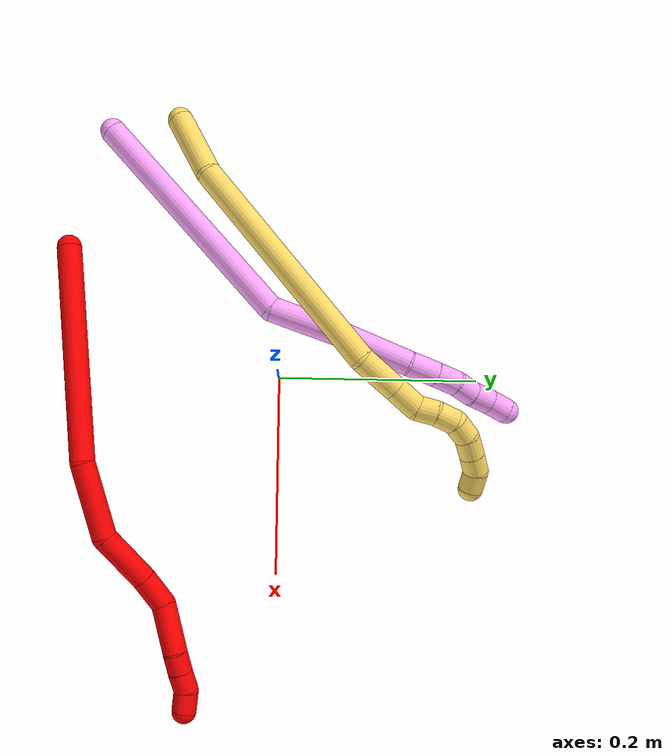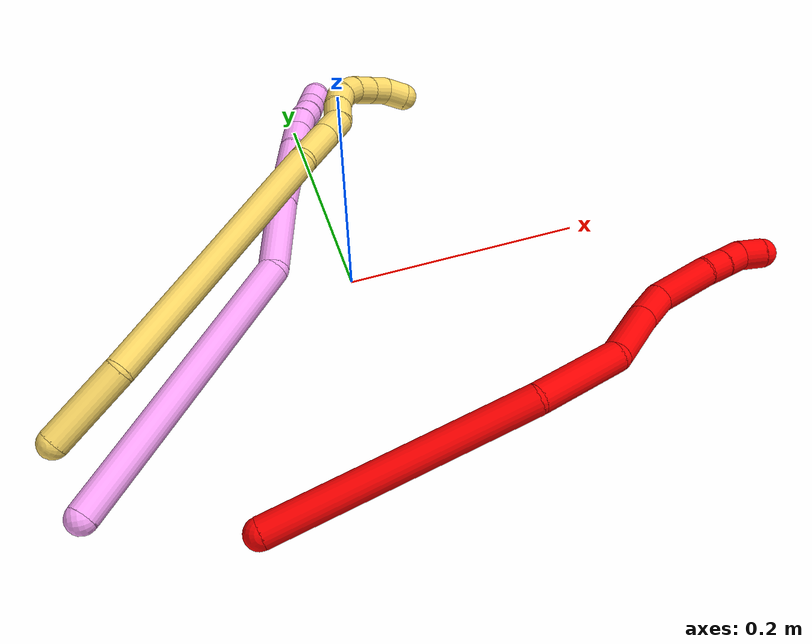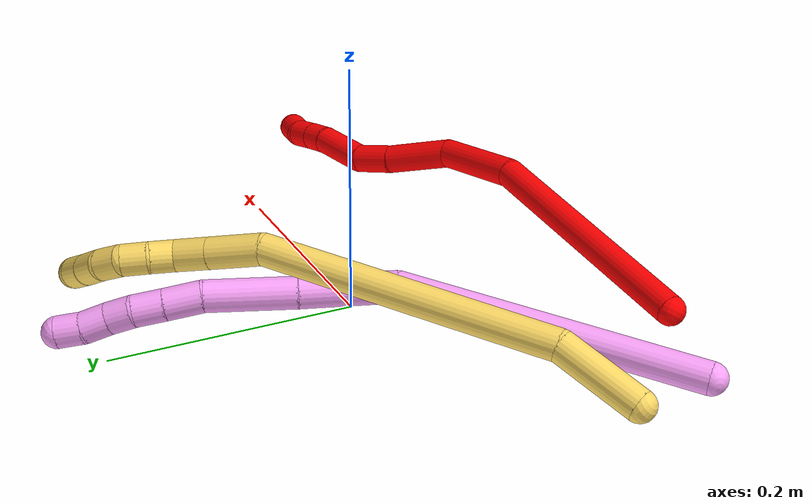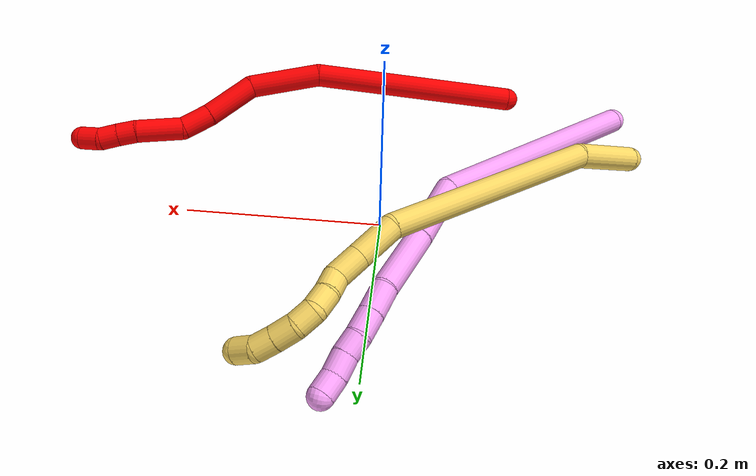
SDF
<sdf version="1.7">
 <world name="default">
  <model name="2">
   <static>0</static>
   <link name="2">
    <collision name="collision-cylinder-e_1_1_4">
     <pose>0.103478 0.016603 0.032128 -0.476989 1.23458 -0.341781</pose>
     <geometry><cylinder><radius>0.0125</radius><length>0.219232</length></cylinder></geometry>
     <surface>
      <friction><ode><mu>1.16</mu><mu2>1.16</mu2><slip1>0</slip1><slip2>0</slip2></ode></friction>
      <contact><ode><kp>1e+06</kp><kd>1</kd><max_vel>0</max_vel><min_depth>0.001</min_depth></ode></contact>
     </surface>
    </collision>
    <visual name="visual-cylinder-e_1_1_4">
     <pose>0.103478 0.016603 0.032128 -0.476989 1.23458 -0.341781</pose>
     <geometry><cylinder><radius>0.0125</radius><length>0.219232</length></cylinder></geometry>
     <material><ambient>1 0 0 1</ambient></material>
    </visual>
    <collision name="collision-cylinder-e_2_4_5">
     <pose>0.245098 0.03886 0.06435 -1.55416 1.42363 -1.40719</pose>
     <geometry><cylinder><radius>0.0125</radius><length>0.077117</length></cylinder></geometry>
     <surface>
      <friction><ode><mu>1.16</mu><mu2>1.16</mu2><slip1>0</slip1><slip2>0</slip2></ode></friction>
      <contact><ode><kp>1e+06</kp><kd>1</kd><max_vel>0</max_vel><min_depth>0.001</min_depth></ode></contact>
     </surface>
    </collision>
    <visual name="visual-cylinder-e_2_4_5">
     <pose>0.245098 0.03886 0.06435 -1.55416 1.42363 -1.40719</pose>
     <geometry><cylinder><radius>0.0125</radius><length>0.077117</length></cylinder></geometry>
     <material><ambient>1 0 0 1</ambient></material>
    </visual>
    <collision name="collision-cylinder-e_3_5_6">
     <pose>0.307862 0.053911 0.052501 -2.47488 1.01782 -2.03067</pose>
     <geometry><cylinder><radius>0.0125</radius><length>0.057869</length></cylinder></geometry>
     <surface>
      <friction><ode><mu>1.16</mu><mu2>1.16</mu2><slip1>0</slip1><slip2>0</slip2></ode></friction>
      <contact><ode><kp>1e+06</kp><kd>1</kd><max_vel>0</max_vel><min_depth>0.001</min_depth></ode></contact>
     </surface>
    </collision>
    <visual name="visual-cylinder-e_3_5_6">
     <pose>0.307862 0.053911 0.052501 -2.47488 1.01782 -2.03067</pose>
     <geometry><cylinder><radius>0.0125</radius><length>0.057869</length></cylinder></geometry>
     <material><ambient>1 0 0 1</ambient></material>
    </visual>
    <collision name="collision-cylinder-e_4_6_7">
     <pose>0.347292 0.068872 0.035628 -2.29597 1.10556 -1.88131</pose>
     <geometry><cylinder><radius>0.0125</radius><length>0.033136</length></cylinder></geometry>
     <surface>
      <friction><ode><mu>1.16</mu><mu2>1.16</mu2><slip1>0</slip1><slip2>0</slip2></ode></friction>
      <contact><ode><kp>1e+06</kp><kd>1</kd><max_vel>0</max_vel><min_depth>0.001</min_depth></ode></contact>
     </surface>
    </collision>
    <visual name="visual-cylinder-e_4_6_7">
     <pose>0.347292 0.068872 0.035628 -2.29597 1.10556 -1.88131</pose>
     <geometry><cylinder><radius>0.0125</radius><length>0.033136</length></cylinder></geometry>
     <material><ambient>1 0 0 1</ambient></material>
    </visual>
    <collision name="collision-cylinder-e_5_7_8">
     <pose>0.386689 0.079388 0.033555 -1.04767 1.34232 -0.860211</pose>
     <geometry><cylinder><radius>0.0125</radius><length>0.050491</length></cylinder></geometry>
     <surface>
      <friction><ode><mu>1.16</mu><mu2>1.16</mu2><slip1>0</slip1><slip2>0</slip2></ode></friction>
      <contact><ode><kp>1e+06</kp><kd>1</kd><max_vel>0</max_vel><min_depth>0.001</min_depth></ode></contact>
     </surface>
    </collision>
    <visual name="visual-cylinder-e_5_7_8">
     <pose>0.386689 0.079388 0.033555 -1.04767 1.34232 -0.860211</pose>
     <geometry><cylinder><radius>0.0125</radius><length>0.050491</length></cylinder></geometry>
     <material><ambient>1 0 0 1</ambient></material>
    </visual>
    <collision name="collision-cylinder-e_6_8_9">
     <pose>0.421285 0.085343 0.036276 -1.70504 1.47007 -1.60455</pose>
     <geometry><cylinder><radius>0.0125</radius><length>0.020115</length></cylinder></geometry>
     <surface>
      <friction><ode><mu>1.16</mu><mu2>1.16</mu2><slip1>0</slip1><slip2>0</slip2></ode></friction>
      <contact><ode><kp>1e+06</kp><kd>1</kd><max_vel>0</max_vel><min_depth>0.001</min_depth></ode></contact>
     </surface>
    </collision>
    <visual name="visual-cylinder-e_6_8_9">
     <pose>0.421285 0.085343 0.036276 -1.70504 1.47007 -1.60455</pose>
     <geometry><cylinder><radius>0.0125</radius><length>0.020115</length></cylinder></geometry>
     <material><ambient>1 0 0 1</ambient></material>
    </visual>
    <collision name="collision-cylinder-e_7_9_10">
     <pose>0.441351 0.087598 0.03558 -1.99146 1.43519 -1.86412</pose>
     <geometry><cylinder><radius>0.0125</radius><length>0.020305</length></cylinder></geometry>
     <surface>
      <friction><ode><mu>1.16</mu><mu2>1.16</mu2><slip1>0</slip1><slip2>0</slip2></ode></friction>
      <contact><ode><kp>1e+06</kp><kd>1</kd><max_vel>0</max_vel><min_depth>0.001</min_depth></ode></contact>
     </surface>
    </collision>
    <visual name="visual-cylinder-e_7_9_10">
     <pose>0.441351 0.087598 0.03558 -1.99146 1.43519 -1.86412</pose>
     <geometry><cylinder><radius>0.0125</radius><length>0.020305</length></cylinder></geometry>
     <material><ambient>1 0 0 1</ambient></material>
    </visual>
    <collision name="collision-cylinder-e_8_10_2">
     <pose>0.461851 0.087113 0.037481 0.614902 1.28983 0.468897</pose>
     <geometry><cylinder><radius>0.0125</radius><length>0.021734</length></cylinder></geometry>
     <surface>
      <friction><ode><mu>1.16</mu><mu2>1.16</mu2><slip1>0</slip1><slip2>0</slip2></ode></friction>
      <contact><ode><kp>1e+06</kp><kd>1</kd><max_vel>0</max_vel><min_depth>0.001</min_depth></ode></contact>
     </surface>
    </collision>
    <visual name="visual-cylinder-e_8_10_2">
     <pose>0.461851 0.087113 0.037481 0.614902 1.28983 0.468897</pose>
     <geometry><cylinder><radius>0.0125</radius><length>0.021734</length></cylinder></geometry>
     <material><ambient>1 0 0 1</ambient></material>
    </visual>
    <collision name="collision-sphere-2">
     <pose>0.472292 0.085375 0.039942 0 -0 0</pose>
     <geometry><sphere><radius>0.0125</radius></sphere></geometry>
     <surface>
      <friction><ode><mu>1.16</mu><mu2>1.16</mu2><slip1>0</slip1><slip2>0</slip2></ode></friction>
      <contact><ode><kp>1e+06</kp><kd>1</kd><max_vel>0</max_vel><min_depth>0.001</min_depth></ode></contact>
     </surface>
    </collision>
    <visual name="visual-sphere-2">
     <pose>0.472292 0.085375 0.039942 0 -0 0</pose>
     <geometry><sphere><radius>0.0125</radius></sphere></geometry>
     <material><ambient>1 0 0 1</ambient></material>
    </visual>
    <collision name="collision-sphere-10">
     <pose>0.45141 0.088851 0.03502 0 -0 0</pose>
     <geometry><sphere><radius>0.0125</radius></sphere></geometry>
     <surface>
      <friction><ode><mu>1.16</mu><mu2>1.16</mu2><slip1>0</slip1><slip2>0</slip2></ode></friction>
      <contact><ode><kp>1e+06</kp><kd>1</kd><max_vel>0</max_vel><min_depth>0.001</min_depth></ode></contact>
     </surface>
    </collision>
    <visual name="visual-sphere-10">
     <pose>0.45141 0.088851 0.03502 0 -0 0</pose>
     <geometry><sphere><radius>0.0125</radius></sphere></geometry>
     <material><ambient>1 0 0 1</ambient></material>
    </visual>
    <collision name="collision-sphere-9">
     <pose>0.431292 0.086346 0.036141 0 -0 0</pose>
     <geometry><sphere><radius>0.0125</radius></sphere></geometry>
     <surface>
      <friction><ode><mu>1.16</mu><mu2>1.16</mu2><slip1>0</slip1><slip2>0</slip2></ode></friction>
      <contact><ode><kp>1e+06</kp><kd>1</kd><max_vel>0</max_vel><min_depth>0.001</min_depth></ode></contact>
     </surface>
    </collision>
    <visual name="visual-sphere-9">
     <pose>0.431292 0.086346 0.036141 0 -0 0</pose>
     <geometry><sphere><radius>0.0125</radius></sphere></geometry>
     <material><ambient>1 0 0 1</ambient></material>
    </visual>
    <collision name="collision-sphere-4">
     <pose>0.206957 0.033207 0.064256 0 -0 0</pose>
     <geometry><sphere><radius>0.0125</radius></sphere></geometry>
     <surface>
      <friction><ode><mu>1.16</mu><mu2>1.16</mu2><slip1>0</slip1><slip2>0</slip2></ode></friction>
      <contact><ode><kp>1e+06</kp><kd>1</kd><max_vel>0</max_vel><min_depth>0.001</min_depth></ode></contact>
     </surface>
    </collision>
    <visual name="visual-sphere-4">
     <pose>0.206957 0.033207 0.064256 0 -0 0</pose>
     <geometry><sphere><radius>0.0125</radius></sphere></geometry>
     <material><ambient>1 0 0 1</ambient></material>
    </visual>
    <collision name="collision-sphere-1">
     <geometry><sphere><radius>0.0125</radius></sphere></geometry>
     <surface>
      <friction><ode><mu>1.16</mu><mu2>1.16</mu2><slip1>0</slip1><slip2>0</slip2></ode></friction>
      <contact><ode><kp>1e+06</kp><kd>1</kd><max_vel>0</max_vel><min_depth>0.001</min_depth></ode></contact>
     </surface>
    </collision>
    <visual name="visual-sphere-1">
     <geometry><sphere><radius>0.0125</radius></sphere></geometry>
     <material><ambient>1 0 0 1</ambient></material>
    </visual>
    <collision name="collision-sphere-8">
     <pose>0.411278 0.084341 0.036411 0 -0 0</pose>
     <geometry><sphere><radius>0.0125</radius></sphere></geometry>
     <surface>
      <friction><ode><mu>1.16</mu><mu2>1.16</mu2><slip1>0</slip1><slip2>0</slip2></ode></friction>
      <contact><ode><kp>1e+06</kp><kd>1</kd><max_vel>0</max_vel><min_depth>0.001</min_depth></ode></contact>
     </surface>
    </collision>
    <visual name="visual-sphere-8">
     <pose>0.411278 0.084341 0.036411 0 -0 0</pose>
     <geometry><sphere><radius>0.0125</radius></sphere></geometry>
     <material><ambient>1 0 0 1</ambient></material>
    </visual>
    <collision name="collision-sphere-5">
     <pose>0.28324 0.044513 0.064444 0 -0 0</pose>
     <geometry><sphere><radius>0.0125</radius></sphere></geometry>
     <surface>
      <friction><ode><mu>1.16</mu><mu2>1.16</mu2><slip1>0</slip1><slip2>0</slip2></ode></friction>
      <contact><ode><kp>1e+06</kp><kd>1</kd><max_vel>0</max_vel><min_depth>0.001</min_depth></ode></contact>
     </surface>
    </collision>
    <visual name="visual-sphere-5">
     <pose>0.28324 0.044513 0.064444 0 -0 0</pose>
     <geometry><sphere><radius>0.0125</radius></sphere></geometry>
     <material><ambient>1 0 0 1</ambient></material>
    </visual>
    <collision name="collision-sphere-6">
     <pose>0.332485 0.063309 0.040558 0 -0 0</pose>
     <geometry><sphere><radius>0.0125</radius></sphere></geometry>
     <surface>
      <friction><ode><mu>1.16</mu><mu2>1.16</mu2><slip1>0</slip1><slip2>0</slip2></ode></friction>
      <contact><ode><kp>1e+06</kp><kd>1</kd><max_vel>0</max_vel><min_depth>0.001</min_depth></ode></contact>
     </surface>
    </collision>
    <visual name="visual-sphere-6">
     <pose>0.332485 0.063309 0.040558 0 -0 0</pose>
     <geometry><sphere><radius>0.0125</radius></sphere></geometry>
     <material><ambient>1 0 0 1</ambient></material>
    </visual>
    <collision name="collision-sphere-7">
     <pose>0.362099 0.074435 0.030698 0 -0 0</pose>
     <geometry><sphere><radius>0.0125</radius></sphere></geometry>
     <surface>
      <friction><ode><mu>1.16</mu><mu2>1.16</mu2><slip1>0</slip1><slip2>0</slip2></ode></friction>
      <contact><ode><kp>1e+06</kp><kd>1</kd><max_vel>0</max_vel><min_depth>0.001</min_depth></ode></contact>
     </surface>
    </collision>
    <visual name="visual-sphere-7">
     <pose>0.362099 0.074435 0.030698 0 -0 0</pose>
     <geometry><sphere><radius>0.0125</radius></sphere></geometry>
     <material><ambient>1 0 0 1</ambient></material>
    </visual>
    <inertial>
     <pose>0.235818 0.042872 0.040371 0 -0 0</pose>
     <mass>0.5</mass>
     <inertia>
      <ixx>0.000194</ixx>
      <ixy>0</ixy>
      <ixz>0</ixz>
      <iyy>0.000837</iyy>
      <iyz>0</iyz>
      <izz>-0.001061</izz>
     </inertia>
    </inertial>
   </link>
   <pose>-0.127298 -0.213635 0.011496 0.679983 0.177536 0.174878</pose>
  </model>
  <model name="4">
   <static>0</static>
   <link name="4">
    <collision name="collision-cylinder-e_1_1_4">
     <pose>0.001973 0.092953 -0.075895 -2.25551 0.016441 -0.034646</pose>
     <geometry><cylinder><radius>0.0125</radius><length>0.240034</length></cylinder></geometry>
     <surface>
      <friction><ode><mu>1.16</mu><mu2>1.16</mu2><slip1>0</slip1><slip2>0</slip2></ode></friction>
      <contact><ode><kp>1e+06</kp><kd>1</kd><max_vel>0</max_vel><min_depth>0.001</min_depth></ode></contact>
     </surface>
    </collision>
    <visual name="visual-cylinder-e_1_1_4">
     <pose>0.001973 0.092953 -0.075895 -2.25551 0.016441 -0.034646</pose>
     <geometry><cylinder><radius>0.0125</radius><length>0.240034</length></cylinder></geometry>
     <material><ambient>1 0.65098 0.996078 1</ambient></material>
    </visual>
    <collision name="collision-cylinder-e_2_4_5">
     <pose>0.001224 0.22243 -0.158419 -1.75034 -0.073194 0.087658</pose>
     <geometry><cylinder><radius>0.0125</radius><length>0.074443</length></cylinder></geometry>
     <surface>
      <friction><ode><mu>1.16</mu><mu2>1.16</mu2><slip1>0</slip1><slip2>0</slip2></ode></friction>
      <contact><ode><kp>1e+06</kp><kd>1</kd><max_vel>0</max_vel><min_depth>0.001</min_depth></ode></contact>
     </surface>
    </collision>
    <visual name="visual-cylinder-e_2_4_5">
     <pose>0.001224 0.22243 -0.158419 -1.75034 -0.073194 0.087658</pose>
     <geometry><cylinder><radius>0.0125</radius><length>0.074443</length></cylinder></geometry>
     <material><ambient>1 0.65098 0.996078 1</ambient></material>
    </visual>
    <collision name="collision-cylinder-e_3_5_6">
     <pose>-0.004448 0.293119 -0.173235 -1.80597 -0.083794 0.106206</pose>
     <geometry><cylinder><radius>0.0125</radius><length>0.070509</length></cylinder></geometry>
     <surface>
      <friction><ode><mu>1.16</mu><mu2>1.16</mu2><slip1>0</slip1><slip2>0</slip2></ode></friction>
      <contact><ode><kp>1e+06</kp><kd>1</kd><max_vel>0</max_vel><min_depth>0.001</min_depth></ode></contact>
     </surface>
    </collision>
    <visual name="visual-cylinder-e_3_5_6">
     <pose>-0.004448 0.293119 -0.173235 -1.80597 -0.083794 0.106206</pose>
     <geometry><cylinder><radius>0.0125</radius><length>0.070509</length></cylinder></geometry>
     <material><ambient>1 0.65098 0.996078 1</ambient></material>
    </visual>
    <collision name="collision-cylinder-e_4_6_7">
     <pose>-0.011242 0.341125 -0.184061 -1.7593 -0.266225 0.320943</pose>
     <geometry><cylinder><radius>0.0125</radius><length>0.029213</length></cylinder></geometry>
     <surface>
      <friction><ode><mu>1.16</mu><mu2>1.16</mu2><slip1>0</slip1><slip2>0</slip2></ode></friction>
      <contact><ode><kp>1e+06</kp><kd>1</kd><max_vel>0</max_vel><min_depth>0.001</min_depth></ode></contact>
     </surface>
    </collision>
    <visual name="visual-cylinder-e_4_6_7">
     <pose>-0.011242 0.341125 -0.184061 -1.7593 -0.266225 0.320943</pose>
     <geometry><cylinder><radius>0.0125</radius><length>0.029213</length></cylinder></geometry>
     <material><ambient>1 0.65098 0.996078 1</ambient></material>
    </visual>
    <collision name="collision-cylinder-e_5_7_8">
     <pose>-0.018216 0.366208 -0.189157 -1.78585 -0.265719 0.328983</pose>
     <geometry><cylinder><radius>0.0125</radius><length>0.023849</length></cylinder></geometry>
     <surface>
      <friction><ode><mu>1.16</mu><mu2>1.16</mu2><slip1>0</slip1><slip2>0</slip2></ode></friction>
      <contact><ode><kp>1e+06</kp><kd>1</kd><max_vel>0</max_vel><min_depth>0.001</min_depth></ode></contact>
     </surface>
    </collision>
    <visual name="visual-cylinder-e_5_7_8">
     <pose>-0.018216 0.366208 -0.189157 -1.78585 -0.265719 0.328983</pose>
     <geometry><cylinder><radius>0.0125</radius><length>0.023849</length></cylinder></geometry>
     <material><ambient>1 0.65098 0.996078 1</ambient></material>
    </visual>
    <collision name="collision-cylinder-e_6_8_9">
     <pose>-0.025572 0.385997 -0.194886 -1.93654 -0.432445 0.618202</pose>
     <geometry><cylinder><radius>0.0125</radius><length>0.020162</length></cylinder></geometry>
     <surface>
      <friction><ode><mu>1.16</mu><mu2>1.16</mu2><slip1>0</slip1><slip2>0</slip2></ode></friction>
      <contact><ode><kp>1e+06</kp><kd>1</kd><max_vel>0</max_vel><min_depth>0.001</min_depth></ode></contact>
     </surface>
    </collision>
    <visual name="visual-cylinder-e_6_8_9">
     <pose>-0.025572 0.385997 -0.194886 -1.93654 -0.432445 0.618202</pose>
     <geometry><cylinder><radius>0.0125</radius><length>0.020162</length></cylinder></geometry>
     <material><ambient>1 0.65098 0.996078 1</ambient></material>
    </visual>
    <collision name="collision-cylinder-e_7_9_10">
     <pose>-0.034253 0.404054 -0.200145 -1.77667 -0.430047 0.525035</pose>
     <geometry><cylinder><radius>0.0125</radius><length>0.021377</length></cylinder></geometry>
     <surface>
      <friction><ode><mu>1.16</mu><mu2>1.16</mu2><slip1>0</slip1><slip2>0</slip2></ode></friction>
      <contact><ode><kp>1e+06</kp><kd>1</kd><max_vel>0</max_vel><min_depth>0.001</min_depth></ode></contact>
     </surface>
    </collision>
    <visual name="visual-cylinder-e_7_9_10">
     <pose>-0.034253 0.404054 -0.200145 -1.77667 -0.430047 0.525035</pose>
     <geometry><cylinder><radius>0.0125</radius><length>0.021377</length></cylinder></geometry>
     <material><ambient>1 0.65098 0.996078 1</ambient></material>
    </visual>
    <collision name="collision-cylinder-e_8_10_2">
     <pose>-0.04143 0.422939 -0.205115 -1.87892 -0.269821 0.367108</pose>
     <geometry><cylinder><radius>0.0125</radius><length>0.020413</length></cylinder></geometry>
     <surface>
      <friction><ode><mu>1.16</mu><mu2>1.16</mu2><slip1>0</slip1><slip2>0</slip2></ode></friction>
      <contact><ode><kp>1e+06</kp><kd>1</kd><max_vel>0</max_vel><min_depth>0.001</min_depth></ode></contact>
     </surface>
    </collision>
    <visual name="visual-cylinder-e_8_10_2">
     <pose>-0.04143 0.422939 -0.205115 -1.87892 -0.269821 0.367108</pose>
     <geometry><cylinder><radius>0.0125</radius><length>0.020413</length></cylinder></geometry>
     <material><ambient>1 0.65098 0.996078 1</ambient></material>
    </visual>
    <collision name="collision-sphere-2">
     <pose>-0.044151 0.432312 -0.208098 0 -0 0</pose>
     <geometry><sphere><radius>0.0125</radius></sphere></geometry>
     <surface>
      <friction><ode><mu>1.16</mu><mu2>1.16</mu2><slip1>0</slip1><slip2>0</slip2></ode></friction>
      <contact><ode><kp>1e+06</kp><kd>1</kd><max_vel>0</max_vel><min_depth>0.001</min_depth></ode></contact>
     </surface>
    </collision>
    <visual name="visual-sphere-2">
     <pose>-0.044151 0.432312 -0.208098 0 -0 0</pose>
     <geometry><sphere><radius>0.0125</radius></sphere></geometry>
     <material><ambient>1 0.65098 0.996078 1</ambient></material>
    </visual>
    <collision name="collision-sphere-10">
     <pose>-0.03871 0.413565 -0.202132 0 -0 0</pose>
     <geometry><sphere><radius>0.0125</radius></sphere></geometry>
     <surface>
      <friction><ode><mu>1.16</mu><mu2>1.16</mu2><slip1>0</slip1><slip2>0</slip2></ode></friction>
      <contact><ode><kp>1e+06</kp><kd>1</kd><max_vel>0</max_vel><min_depth>0.001</min_depth></ode></contact>
     </surface>
    </collision>
    <visual name="visual-sphere-10">
     <pose>-0.03871 0.413565 -0.202132 0 -0 0</pose>
     <geometry><sphere><radius>0.0125</radius></sphere></geometry>
     <material><ambient>1 0.65098 0.996078 1</ambient></material>
    </visual>
    <collision name="collision-sphere-9">
     <pose>-0.029797 0.394544 -0.198159 0 -0 0</pose>
     <geometry><sphere><radius>0.0125</radius></sphere></geometry>
     <surface>
      <friction><ode><mu>1.16</mu><mu2>1.16</mu2><slip1>0</slip1><slip2>0</slip2></ode></friction>
      <contact><ode><kp>1e+06</kp><kd>1</kd><max_vel>0</max_vel><min_depth>0.001</min_depth></ode></contact>
     </surface>
    </collision>
    <visual name="visual-sphere-9">
     <pose>-0.029797 0.394544 -0.198159 0 -0 0</pose>
     <geometry><sphere><radius>0.0125</radius></sphere></geometry>
     <material><ambient>1 0.65098 0.996078 1</ambient></material>
    </visual>
    <collision name="collision-sphere-4">
     <pose>0.003946 0.185905 -0.15179 0 -0 0</pose>
     <geometry><sphere><radius>0.0125</radius></sphere></geometry>
     <surface>
      <friction><ode><mu>1.16</mu><mu2>1.16</mu2><slip1>0</slip1><slip2>0</slip2></ode></friction>
      <contact><ode><kp>1e+06</kp><kd>1</kd><max_vel>0</max_vel><min_depth>0.001</min_depth></ode></contact>
     </surface>
    </collision>
    <visual name="visual-sphere-4">
     <pose>0.003946 0.185905 -0.15179 0 -0 0</pose>
     <geometry><sphere><radius>0.0125</radius></sphere></geometry>
     <material><ambient>1 0.65098 0.996078 1</ambient></material>
    </visual>
    <collision name="collision-sphere-1">
     <geometry><sphere><radius>0.0125</radius></sphere></geometry>
     <surface>
      <friction><ode><mu>1.16</mu><mu2>1.16</mu2><slip1>0</slip1><slip2>0</slip2></ode></friction>
      <contact><ode><kp>1e+06</kp><kd>1</kd><max_vel>0</max_vel><min_depth>0.001</min_depth></ode></contact>
     </surface>
    </collision>
    <visual name="visual-sphere-1">
     <geometry><sphere><radius>0.0125</radius></sphere></geometry>
     <material><ambient>1 0.65098 0.996078 1</ambient></material>
    </visual>
    <collision name="collision-sphere-8">
     <pose>-0.021348 0.377449 -0.191613 0 -0 0</pose>
     <geometry><sphere><radius>0.0125</radius></sphere></geometry>
     <surface>
      <friction><ode><mu>1.16</mu><mu2>1.16</mu2><slip1>0</slip1><slip2>0</slip2></ode></friction>
      <contact><ode><kp>1e+06</kp><kd>1</kd><max_vel>0</max_vel><min_depth>0.001</min_depth></ode></contact>
     </surface>
    </collision>
    <visual name="visual-sphere-8">
     <pose>-0.021348 0.377449 -0.191613 0 -0 0</pose>
     <geometry><sphere><radius>0.0125</radius></sphere></geometry>
     <material><ambient>1 0.65098 0.996078 1</ambient></material>
    </visual>
    <collision name="collision-sphere-5">
     <pose>-0.001498 0.258955 -0.165049 0 -0 0</pose>
     <geometry><sphere><radius>0.0125</radius></sphere></geometry>
     <surface>
      <friction><ode><mu>1.16</mu><mu2>1.16</mu2><slip1>0</slip1><slip2>0</slip2></ode></friction>
      <contact><ode><kp>1e+06</kp><kd>1</kd><max_vel>0</max_vel><min_depth>0.001</min_depth></ode></contact>
     </surface>
    </collision>
    <visual name="visual-sphere-5">
     <pose>-0.001498 0.258955 -0.165049 0 -0 0</pose>
     <geometry><sphere><radius>0.0125</radius></sphere></geometry>
     <material><ambient>1 0.65098 0.996078 1</ambient></material>
    </visual>
    <collision name="collision-sphere-6">
     <pose>-0.007399 0.327283 -0.18142 0 -0 0</pose>
     <geometry><sphere><radius>0.0125</radius></sphere></geometry>
     <surface>
      <friction><ode><mu>1.16</mu><mu2>1.16</mu2><slip1>0</slip1><slip2>0</slip2></ode></friction>
      <contact><ode><kp>1e+06</kp><kd>1</kd><max_vel>0</max_vel><min_depth>0.001</min_depth></ode></contact>
     </surface>
    </collision>
    <visual name="visual-sphere-6">
     <pose>-0.007399 0.327283 -0.18142 0 -0 0</pose>
     <geometry><sphere><radius>0.0125</radius></sphere></geometry>
     <material><ambient>1 0.65098 0.996078 1</ambient></material>
    </visual>
    <collision name="collision-sphere-7">
     <pose>-0.015085 0.354967 -0.186702 0 -0 0</pose>
     <geometry><sphere><radius>0.0125</radius></sphere></geometry>
     <surface>
      <friction><ode><mu>1.16</mu><mu2>1.16</mu2><slip1>0</slip1><slip2>0</slip2></ode></friction>
      <contact><ode><kp>1e+06</kp><kd>1</kd><max_vel>0</max_vel><min_depth>0.001</min_depth></ode></contact>
     </surface>
    </collision>
    <visual name="visual-sphere-7">
     <pose>-0.015085 0.354967 -0.186702 0 -0 0</pose>
     <geometry><sphere><radius>0.0125</radius></sphere></geometry>
     <material><ambient>1 0.65098 0.996078 1</ambient></material>
    </visual>
    <inertial>
     <pose>-0.005211 0.20658 -0.129016 0 -0 0</pose>
     <mass>0.5</mass>
     <inertia>
      <ixx>0.001205</ixx>
      <ixy>0</ixy>
      <ixz>0</ixz>
      <iyy>-0.000744</iyy>
      <iyz>0</iyz>
      <izz>-0.001003</izz>
     </inertia>
    </inertial>
   </link>
   <pose>-0.241744 -0.169827 0.024006 2.5254 -1.48368 -2.67291</pose>
  </model>
  <model name="5">
   <static>0</static>
   <link name="5">
    <collision name="collision-cylinder-e_1_1_4">
     <pose>0.023674 0.019481 -0.015957 -2.25707 0.754548 -1.39355</pose>
     <geometry><cylinder><radius>0.0125</radius><length>0.069126</length></cylinder></geometry>
     <surface>
      <friction><ode><mu>1.16</mu><mu2>1.16</mu2><slip1>0</slip1><slip2>0</slip2></ode></friction>
      <contact><ode><kp>1e+06</kp><kd>1</kd><max_vel>0</max_vel><min_depth>0.001</min_depth></ode></contact>
     </surface>
    </collision>
    <visual name="visual-cylinder-e_1_1_4">
     <pose>0.023674 0.019481 -0.015957 -2.25707 0.754548 -1.39355</pose>
     <geometry><cylinder><radius>0.0125</radius><length>0.069126</length></cylinder></geometry>
     <material><ambient>1 0.858824 0.4 1</ambient></material>
    </visual>
    <collision name="collision-cylinder-e_2_4_5">
     <pose>0.101122 0.105074 -0.113719 -2.46189 0.472611 -1.19582</pose>
     <geometry><cylinder><radius>0.0125</radius><length>0.236259</length></cylinder></geometry>
     <surface>
      <friction><ode><mu>1.16</mu><mu2>1.16</mu2><slip1>0</slip1><slip2>0</slip2></ode></friction>
      <contact><ode><kp>1e+06</kp><kd>1</kd><max_vel>0</max_vel><min_depth>0.001</min_depth></ode></contact>
     </surface>
    </collision>
    <visual name="visual-cylinder-e_2_4_5">
     <pose>0.101122 0.105074 -0.113719 -2.46189 0.472611 -1.19582</pose>
     <geometry><cylinder><radius>0.0125</radius><length>0.236259</length></cylinder></geometry>
     <material><ambient>1 0.858824 0.4 1</ambient></material>
    </visual>
    <collision name="collision-cylinder-e_3_5_6">
     <pose>0.158556 0.180973 -0.214517 -2.66578 0.169656 -0.674511</pose>
     <geometry><cylinder><radius>0.0125</radius><length>0.043355</length></cylinder></geometry>
     <surface>
      <friction><ode><mu>1.16</mu><mu2>1.16</mu2><slip1>0</slip1><slip2>0</slip2></ode></friction>
      <contact><ode><kp>1e+06</kp><kd>1</kd><max_vel>0</max_vel><min_depth>0.001</min_depth></ode></contact>
     </surface>
    </collision>
    <visual name="visual-cylinder-e_3_5_6">
     <pose>0.158556 0.180973 -0.214517 -2.66578 0.169656 -0.674511</pose>
     <geometry><cylinder><radius>0.0125</radius><length>0.043355</length></cylinder></geometry>
     <material><ambient>1 0.858824 0.4 1</ambient></material>
    </visual>
    <collision name="collision-cylinder-e_4_6_7">
     <pose>0.164677 0.197213 -0.246026 -2.66558 0.172956 -0.686411</pose>
     <geometry><cylinder><radius>0.0125</radius><length>0.028589</length></cylinder></geometry>
     <surface>
      <friction><ode><mu>1.16</mu><mu2>1.16</mu2><slip1>0</slip1><slip2>0</slip2></ode></friction>
      <contact><ode><kp>1e+06</kp><kd>1</kd><max_vel>0</max_vel><min_depth>0.001</min_depth></ode></contact>
     </surface>
    </collision>
    <visual name="visual-cylinder-e_4_6_7">
     <pose>0.164677 0.197213 -0.246026 -2.66558 0.172956 -0.686411</pose>
     <geometry><cylinder><radius>0.0125</radius><length>0.028589</length></cylinder></geometry>
     <material><ambient>1 0.858824 0.4 1</ambient></material>
    </visual>
    <collision name="collision-cylinder-e_5_7_8">
     <pose>0.165755 0.211226 -0.265108 -2.2859 -0.137072 0.298815</pose>
     <geometry><cylinder><radius>0.0125</radius><length>0.020217</length></cylinder></geometry>
     <surface>
      <friction><ode><mu>1.16</mu><mu2>1.16</mu2><slip1>0</slip1><slip2>0</slip2></ode></friction>
      <contact><ode><kp>1e+06</kp><kd>1</kd><max_vel>0</max_vel><min_depth>0.001</min_depth></ode></contact>
     </surface>
    </collision>
    <visual name="visual-cylinder-e_5_7_8">
     <pose>0.165755 0.211226 -0.265108 -2.2859 -0.137072 0.298815</pose>
     <geometry><cylinder><radius>0.0125</radius><length>0.020217</length></cylinder></geometry>
     <material><ambient>1 0.858824 0.4 1</ambient></material>
    </visual>
    <collision name="collision-cylinder-e_6_8_9">
     <pose>0.164221 0.225232 -0.27969 -2.46432 -0.014842 0.042135</pose>
     <geometry><cylinder><radius>0.0125</radius><length>0.020575</length></cylinder></geometry>
     <surface>
      <friction><ode><mu>1.16</mu><mu2>1.16</mu2><slip1>0</slip1><slip2>0</slip2></ode></friction>
      <contact><ode><kp>1e+06</kp><kd>1</kd><max_vel>0</max_vel><min_depth>0.001</min_depth></ode></contact>
     </surface>
    </collision>
    <visual name="visual-cylinder-e_6_8_9">
     <pose>0.164221 0.225232 -0.27969 -2.46432 -0.014842 0.042135</pose>
     <geometry><cylinder><radius>0.0125</radius><length>0.020575</length></cylinder></geometry>
     <material><ambient>1 0.858824 0.4 1</ambient></material>
    </visual>
    <collision name="collision-cylinder-e_7_9_10">
     <pose>0.166105 0.233955 -0.29733 -2.9094 0.203088 -1.43621</pose>
     <geometry><cylinder><radius>0.0125</radius><length>0.020195</length></cylinder></geometry>
     <surface>
      <friction><ode><mu>1.16</mu><mu2>1.16</mu2><slip1>0</slip1><slip2>0</slip2></ode></friction>
      <contact><ode><kp>1e+06</kp><kd>1</kd><max_vel>0</max_vel><min_depth>0.001</min_depth></ode></contact>
     </surface>
    </collision>
    <visual name="visual-cylinder-e_7_9_10">
     <pose>0.166105 0.233955 -0.29733 -2.9094 0.203088 -1.43621</pose>
     <geometry><cylinder><radius>0.0125</radius><length>0.020195</length></cylinder></geometry>
     <material><ambient>1 0.858824 0.4 1</ambient></material>
    </visual>
    <collision name="collision-cylinder-e_8_10_11">
     <pose>0.171819 0.235576 -0.316958 3.07624 0.351543 2.77754</pose>
     <geometry><cylinder><radius>0.0125</radius><length>0.021355</length></cylinder></geometry>
     <surface>
      <friction><ode><mu>1.16</mu><mu2>1.16</mu2><slip1>0</slip1><slip2>0</slip2></ode></friction>
      <contact><ode><kp>1e+06</kp><kd>1</kd><max_vel>0</max_vel><min_depth>0.001</min_depth></ode></contact>
     </surface>
    </collision>
    <visual name="visual-cylinder-e_8_10_11">
     <pose>0.171819 0.235576 -0.316958 3.07624 0.351543 2.77754</pose>
     <geometry><cylinder><radius>0.0125</radius><length>0.021355</length></cylinder></geometry>
     <material><ambient>1 0.858824 0.4 1</ambient></material>
    </visual>
    <collision name="collision-cylinder-e_9_11_12">
     <pose>0.179473 0.23415 -0.336155 3.05798 0.40704 2.74161</pose>
     <geometry><cylinder><radius>0.0125</radius><length>0.020093</length></cylinder></geometry>
     <surface>
      <friction><ode><mu>1.16</mu><mu2>1.16</mu2><slip1>0</slip1><slip2>0</slip2></ode></friction>
      <contact><ode><kp>1e+06</kp><kd>1</kd><max_vel>0</max_vel><min_depth>0.001</min_depth></ode></contact>
     </surface>
    </collision>
    <visual name="visual-cylinder-e_9_11_12">
     <pose>0.179473 0.23415 -0.336155 3.05798 0.40704 2.74161</pose>
     <geometry><cylinder><radius>0.0125</radius><length>0.020093</length></cylinder></geometry>
     <material><ambient>1 0.858824 0.4 1</ambient></material>
    </visual>
    <collision name="collision-cylinder-e_10_12_2">
     <pose>0.189518 0.229112 -0.352229 2.58636 0.643086 1.72622</pose>
     <geometry><cylinder><radius>0.0125</radius><length>0.020235</length></cylinder></geometry>
     <surface>
      <friction><ode><mu>1.16</mu><mu2>1.16</mu2><slip1>0</slip1><slip2>0</slip2></ode></friction>
      <contact><ode><kp>1e+06</kp><kd>1</kd><max_vel>0</max_vel><min_depth>0.001</min_depth></ode></contact>
     </surface>
    </collision>
    <visual name="visual-cylinder-e_10_12_2">
     <pose>0.189518 0.229112 -0.352229 2.58636 0.643086 1.72622</pose>
     <geometry><cylinder><radius>0.0125</radius><length>0.020235</length></cylinder></geometry>
     <material><ambient>1 0.858824 0.4 1</ambient></material>
    </visual>
    <collision name="collision-sphere-2">
     <pose>0.195585 0.224844 -0.35911 0 -0 0</pose>
     <geometry><sphere><radius>0.0125</radius></sphere></geometry>
     <surface>
      <friction><ode><mu>1.16</mu><mu2>1.16</mu2><slip1>0</slip1><slip2>0</slip2></ode></friction>
      <contact><ode><kp>1e+06</kp><kd>1</kd><max_vel>0</max_vel><min_depth>0.001</min_depth></ode></contact>
     </surface>
    </collision>
    <visual name="visual-sphere-2">
     <pose>0.195585 0.224844 -0.35911 0 -0 0</pose>
     <geometry><sphere><radius>0.0125</radius></sphere></geometry>
     <material><ambient>1 0.858824 0.4 1</ambient></material>
    </visual>
    <collision name="collision-sphere-12">
     <pose>0.18345 0.23338 -0.345349 0 -0 0</pose>
     <geometry><sphere><radius>0.0125</radius></sphere></geometry>
     <surface>
      <friction><ode><mu>1.16</mu><mu2>1.16</mu2><slip1>0</slip1><slip2>0</slip2></ode></friction>
      <contact><ode><kp>1e+06</kp><kd>1</kd><max_vel>0</max_vel><min_depth>0.001</min_depth></ode></contact>
     </surface>
    </collision>
    <visual name="visual-sphere-12">
     <pose>0.18345 0.23338 -0.345349 0 -0 0</pose>
     <geometry><sphere><radius>0.0125</radius></sphere></geometry>
     <material><ambient>1 0.858824 0.4 1</ambient></material>
    </visual>
    <collision name="collision-sphere-11">
     <pose>0.175496 0.234921 -0.326962 0 -0 0</pose>
     <geometry><sphere><radius>0.0125</radius></sphere></geometry>
     <surface>
      <friction><ode><mu>1.16</mu><mu2>1.16</mu2><slip1>0</slip1><slip2>0</slip2></ode></friction>
      <contact><ode><kp>1e+06</kp><kd>1</kd><max_vel>0</max_vel><min_depth>0.001</min_depth></ode></contact>
     </surface>
    </collision>
    <visual name="visual-sphere-11">
     <pose>0.175496 0.234921 -0.326962 0 -0 0</pose>
     <geometry><sphere><radius>0.0125</radius></sphere></geometry>
     <material><ambient>1 0.858824 0.4 1</ambient></material>
    </visual>
    <collision name="collision-sphere-10">
     <pose>0.168142 0.23623 -0.306955 0 -0 0</pose>
     <geometry><sphere><radius>0.0125</radius></sphere></geometry>
     <surface>
      <friction><ode><mu>1.16</mu><mu2>1.16</mu2><slip1>0</slip1><slip2>0</slip2></ode></friction>
      <contact><ode><kp>1e+06</kp><kd>1</kd><max_vel>0</max_vel><min_depth>0.001</min_depth></ode></contact>
     </surface>
    </collision>
    <visual name="visual-sphere-10">
     <pose>0.168142 0.23623 -0.306955 0 -0 0</pose>
     <geometry><sphere><radius>0.0125</radius></sphere></geometry>
     <material><ambient>1 0.858824 0.4 1</ambient></material>
    </visual>
    <collision name="collision-sphere-9">
     <pose>0.164069 0.231679 -0.287706 0 -0 0</pose>
     <geometry><sphere><radius>0.0125</radius></sphere></geometry>
     <surface>
      <friction><ode><mu>1.16</mu><mu2>1.16</mu2><slip1>0</slip1><slip2>0</slip2></ode></friction>
      <contact><ode><kp>1e+06</kp><kd>1</kd><max_vel>0</max_vel><min_depth>0.001</min_depth></ode></contact>
     </surface>
    </collision>
    <visual name="visual-sphere-9">
     <pose>0.164069 0.231679 -0.287706 0 -0 0</pose>
     <geometry><sphere><radius>0.0125</radius></sphere></geometry>
     <material><ambient>1 0.858824 0.4 1</ambient></material>
    </visual>
    <collision name="collision-sphere-4">
     <pose>0.047348 0.038962 -0.031914 0 -0 0</pose>
     <geometry><sphere><radius>0.0125</radius></sphere></geometry>
     <surface>
      <friction><ode><mu>1.16</mu><mu2>1.16</mu2><slip1>0</slip1><slip2>0</slip2></ode></friction>
      <contact><ode><kp>1e+06</kp><kd>1</kd><max_vel>0</max_vel><min_depth>0.001</min_depth></ode></contact>
     </surface>
    </collision>
    <visual name="visual-sphere-4">
     <pose>0.047348 0.038962 -0.031914 0 -0 0</pose>
     <geometry><sphere><radius>0.0125</radius></sphere></geometry>
     <material><ambient>1 0.858824 0.4 1</ambient></material>
    </visual>
    <collision name="collision-sphere-1">
     <geometry><sphere><radius>0.0125</radius></sphere></geometry>
     <surface>
      <friction><ode><mu>1.16</mu><mu2>1.16</mu2><slip1>0</slip1><slip2>0</slip2></ode></friction>
      <contact><ode><kp>1e+06</kp><kd>1</kd><max_vel>0</max_vel><min_depth>0.001</min_depth></ode></contact>
     </surface>
    </collision>
    <visual name="visual-sphere-1">
     <geometry><sphere><radius>0.0125</radius></sphere></geometry>
     <material><ambient>1 0.858824 0.4 1</ambient></material>
    </visual>
    <collision name="collision-sphere-8">
     <pose>0.164374 0.218786 -0.271673 0 -0 0</pose>
     <geometry><sphere><radius>0.0125</radius></sphere></geometry>
     <surface>
      <friction><ode><mu>1.16</mu><mu2>1.16</mu2><slip1>0</slip1><slip2>0</slip2></ode></friction>
      <contact><ode><kp>1e+06</kp><kd>1</kd><max_vel>0</max_vel><min_depth>0.001</min_depth></ode></contact>
     </surface>
    </collision>
    <visual name="visual-sphere-8">
     <pose>0.164374 0.218786 -0.271673 0 -0 0</pose>
     <geometry><sphere><radius>0.0125</radius></sphere></geometry>
     <material><ambient>1 0.858824 0.4 1</ambient></material>
    </visual>
    <collision name="collision-sphere-5">
     <pose>0.154896 0.171186 -0.195524 0 -0 0</pose>
     <geometry><sphere><radius>0.0125</radius></sphere></geometry>
     <surface>
      <friction><ode><mu>1.16</mu><mu2>1.16</mu2><slip1>0</slip1><slip2>0</slip2></ode></friction>
      <contact><ode><kp>1e+06</kp><kd>1</kd><max_vel>0</max_vel><min_depth>0.001</min_depth></ode></contact>
     </surface>
    </collision>
    <visual name="visual-sphere-5">
     <pose>0.154896 0.171186 -0.195524 0 -0 0</pose>
     <geometry><sphere><radius>0.0125</radius></sphere></geometry>
     <material><ambient>1 0.858824 0.4 1</ambient></material>
    </visual>
    <collision name="collision-sphere-6">
     <pose>0.162216 0.19076 -0.23351 0 -0 0</pose>
     <geometry><sphere><radius>0.0125</radius></sphere></geometry>
     <surface>
      <friction><ode><mu>1.16</mu><mu2>1.16</mu2><slip1>0</slip1><slip2>0</slip2></ode></friction>
      <contact><ode><kp>1e+06</kp><kd>1</kd><max_vel>0</max_vel><min_depth>0.001</min_depth></ode></contact>
     </surface>
    </collision>
    <visual name="visual-sphere-6">
     <pose>0.162216 0.19076 -0.23351 0 -0 0</pose>
     <geometry><sphere><radius>0.0125</radius></sphere></geometry>
     <material><ambient>1 0.858824 0.4 1</ambient></material>
    </visual>
    <collision name="collision-sphere-7">
     <pose>0.167137 0.203665 -0.258542 0 -0 0</pose>
     <geometry><sphere><radius>0.0125</radius></sphere></geometry>
     <surface>
      <friction><ode><mu>1.16</mu><mu2>1.16</mu2><slip1>0</slip1><slip2>0</slip2></ode></friction>
      <contact><ode><kp>1e+06</kp><kd>1</kd><max_vel>0</max_vel><min_depth>0.001</min_depth></ode></contact>
     </surface>
    </collision>
    <visual name="visual-sphere-7">
     <pose>0.167137 0.203665 -0.258542 0 -0 0</pose>
     <geometry><sphere><radius>0.0125</radius></sphere></geometry>
     <material><ambient>1 0.858824 0.4 1</ambient></material>
    </visual>
    <inertial>
     <pose>0.116609 0.135313 -0.164148 0 -0 0</pose>
     <mass>0.5</mass>
     <inertia>
      <ixx>-0.000556</ixx>
      <ixy>0</ixy>
      <ixz>0</ixz>
      <iyy>-0.000942</iyy>
      <iyz>0</iyz>
      <izz>-0.001201</izz>
     </inertia>
    </inertial>
   </link>
   <pose>-0.253395 -0.102555 0.025967 0.783652 -0.437684 -0.39949</pose>
  </model>
 </world>
</sdf>
